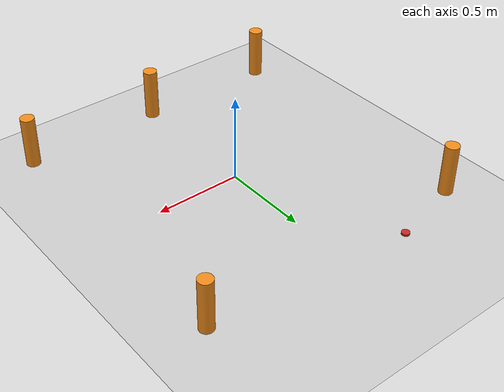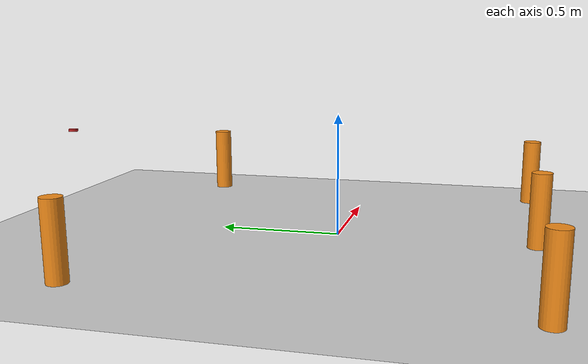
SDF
<sdf version="1.4">
 <world name="default">
  <include><uri>model://sun</uri></include>
  <include><uri>model://ground_plane</uri></include>
  <physics type="ode">
   <real_time_update_rate>1000.0</real_time_update_rate>
   <max_step_size>0.001</max_step_size>
   <real_time_factor>1</real_time_factor>
   <ode>
    <solver>
     <type>quick</type>
     <iters>150</iters>
     <precon_iters>0</precon_iters>
     <sor>1.400000</sor>
     <use_dynamic_moi_rescaling>1</use_dynamic_moi_rescaling>
    </solver>
    <constraints>
     <cfm>0.00001</cfm>
     <erp>0.2</erp>
     <contact_max_correcting_vel>2000.000000</contact_max_correcting_vel>
     <contact_surface_layer>0.01000</contact_surface_layer>
    </constraints>
   </ode>
  </physics>
  <model name="Dynamic_obstacle_0">
   <pose>-0.8 -0.8 0.15 0 0 0</pose>
   <link name="link">
    <collision name="collision">
     <geometry><cylinder><radius>0.04</radius><length>0.3</length></cylinder></geometry>
    </collision>
    <visual name="visual">
     <geometry><cylinder><radius>0.04</radius><length>0.3</length></cylinder></geometry>
     <material>
      <script><uri>file://media/materials/scripts/gazebo.material</uri><name>Gazebo/Orange</name></script>
     </material>
    </visual>
   </link>
  </model>
  <model name="Dynamic_obstacle_1">
   <pose>-0.8 0.8 0.15 0 0 0</pose>
   <link name="link">
    <collision name="collision">
     <geometry><cylinder><radius>0.04</radius><length>0.3</length></cylinder></geometry>
    </collision>
    <visual name="visual">
     <geometry><cylinder><radius>0.04</radius><length>0.3</length></cylinder></geometry>
     <material>
      <script><uri>file://media/materials/scripts/gazebo.material</uri><name>Gazebo/Orange</name></script>
     </material>
    </visual>
   </link>
  </model>
  <model name="Dynamic_obstacle_2">
   <pose>0.8 -0.8 0.15 0 0 0</pose>
   <link name="link">
    <collision name="collision">
     <geometry><cylinder><radius>0.04</radius><length>0.3</length></cylinder></geometry>
    </collision>
    <visual name="visual">
     <geometry><cylinder><radius>0.04</radius><length>0.3</length></cylinder></geometry>
     <material>
      <script><uri>file://media/materials/scripts/gazebo.material</uri><name>Gazebo/Orange</name></script>
     </material>
    </visual>
   </link>
  </model>
  <model name="Dynamic_obstacle_3">
   <pose>0.8 0.8 0.15 0 0 0</pose>
   <link name="link">
    <collision name="collision">
     <geometry><cylinder><radius>0.04</radius><length>0.3</length></cylinder></geometry>
    </collision>
    <visual name="visual">
     <geometry><cylinder><radius>0.04</radius><length>0.3</length></cylinder></geometry>
     <material>
      <script><uri>file://media/materials/scripts/gazebo.material</uri><name>Gazebo/Orange</name></script>
     </material>
    </visual>
   </link>
  </model>
  <model name="Dynamic_obstacle_4">
   <pose>0 -0.8 0.15 0 0 0</pose>
   <link name="link">
    <collision name="collision">
     <geometry><cylinder><radius>0.04</radius><length>0.3</length></cylinder></geometry>
    </collision>
    <visual name="visual">
     <geometry><cylinder><radius>0.04</radius><length>0.3</length></cylinder></geometry>
     <material>
      <script><uri>file://media/materials/scripts/gazebo.material</uri><name>Gazebo/Orange</name></script>
     </material>
    </visual>
   </link>
  </model>
  <model name="goal">
   <static>true</static>
   <link name="goal">
    <visual name="goal1">
     <pose>0 1.2 0.4 0 0 0</pose>
     <geometry><cylinder><radius>0.02</radius><length>0.01</length></cylinder></geometry>
     <material>
      <script><uri>file://media/materials/scripts/gazebo.material</uri><name>Gazebo/Red</name></script>
     </material>
    </visual>
   </link>
  </model>
  <scene><ambient>0.4 0.4 0.4 1</ambient><background>0.7 0.7 0.7 1</background><shadows>true</shadows></scene>
  <model name="actor0_collision_model">
   <pose>0 0 1 0 0 2.75</pose>
   <static>true</static>
   <link name="link">
    <collision name="link">
     <pose>0 -0.18 0.05 0 -1.5707963267948966 0</pose>
     <geometry><box><size>0.44 1.62 0.60</size></box></geometry>
    </collision>
   </link>
  </model>
  <model name="actor1_collision_model">
   <pose>-4 -4 0 0 0 0.78</pose>
   <static>true</static>
   <link name="link">
    <collision name="link">
     <pose>0 -0.18 0.05 0 -1.5707963267948966 0</pose>
     <geometry><box><size>0.44 1.62 0.60</size></box></geometry>
    </collision>
   </link>
  </model>
  <model name="actor2_collision_model">
   <pose>-4 4.5 0 0 0 -0.78</pose>
   <static>true</static>
   <link name="link">
    <collision name="link">
     <pose>0 -0.18 0.05 0 -1.5707963267948966 0</pose>
     <geometry><box><size>0.44 1.62 0.60</size></box></geometry>
    </collision>
   </link>
  </model>
  <model name="actor3_collision_model">
   <pose>4 4.5 0 0 0 0</pose>
   <static>true</static>
   <link name="link">
    <collision name="link">
     <pose>0 -0.18 0.05 0 -1.5707963267948966 0</pose>
     <geometry><box><size>0.44 1.62 0.60</size></box></geometry>
    </collision>
   </link>
  </model>
 </world>
</sdf>
